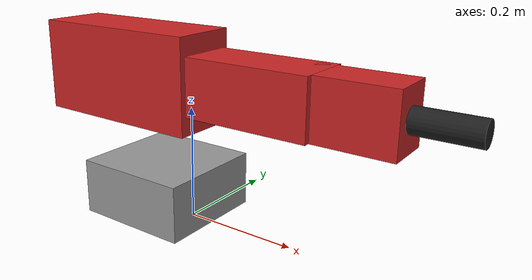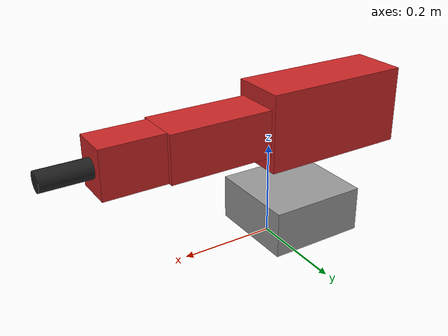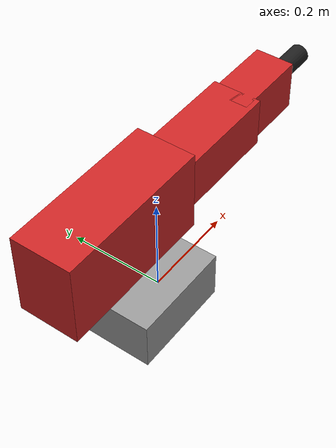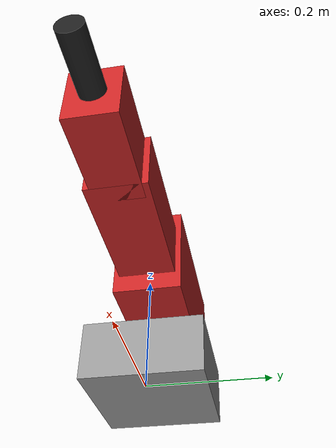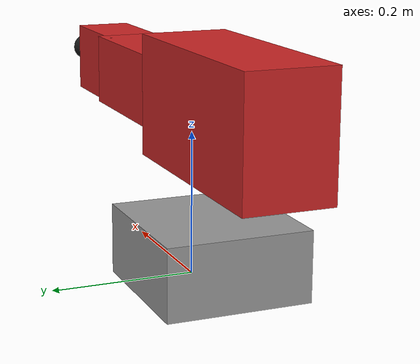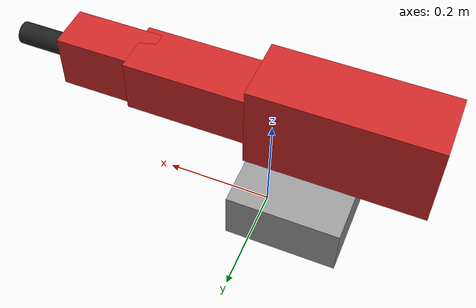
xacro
<?xml version="1.0"?>
<robot xmlns:xacro="http://www.ros.org/wiki/xacro" name="rm501">
    <xacro:arg name="initial_positions_file" default="initial_positions.yaml" />
    <xacro:arg name="ros2_control_hardware_type" default="mock_components" />

    <!-- Import rm501 urdf file -->
    <xacro:include filename="$(find rm501_description)/urdf/rm501.urdf.xacro" />

    <!-- Import control_xacro -->
    <xacro:include filename="rm501.ros2_control.xacro" />

    <xacro:rm501_ros2_control name="FakeSystem" initial_positions_file="$(arg initial_positions_file)" ros2_control_hardware_type="$(arg ros2_control_hardware_type)"/>

</robot>

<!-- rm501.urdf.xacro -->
<robot
  name="rm501" xmlns:xacro="http://www.ros.org/wiki/xacro">

  <xacro:include filename="$(find rm501_description)/urdf/materials.xacro" />

  <xacro:property name="PI" value="3.1415926535897931"/>

  <xacro:property name="density" value="3.09"/>

  <link name="world"/>

  <joint name="world_base" type="fixed">
    <origin
      xyz="0 0 0"
      rpy="0 0 0" />
    <parent
      link="world" />
    <child
      link="rm501_base_link" />
  </joint>

  <link name="rm501_base_link"/>

  <joint name="rm501_base_joint" type="fixed">
    <origin
      xyz="0 0 0"
      rpy="0 0 0" />
    <parent
      link="rm501_base_link" />
    <child
      link="rm501_base" />
  </joint>

  <link
    name="rm501_base">
    <inertial>
      <origin
        xyz="0 0 0"
        rpy="0 0 0"/>
      <mass value="${0.890680700037*density}"/>
      <inertia
      ixx="${0.00287631*density}" ixy="${1.617e-05*density}" ixz="${3.38e-06*density}"
      iyy="${0.00304792*density}" iyz="${2.79e-05*density}"
      izz="${0.00537429*density}"/>
    </inertial>
    <visual>
      <origin
        xyz="-0.060 0 0.049"
        rpy="0 0 0" />
      <geometry>
        <box size="0.208 0.200 0.098"/>
      </geometry>
      <material
        name="metal_grey"/>
    </visual>
    <collision>
      <origin
        xyz="0 0 0"
        rpy="0 0 0" />
      <geometry>
        <box size="0.208 0.200 0.098"/>
      </geometry>
    </collision>
  </link>

<link
    name="rm501_link1">
    <inertial>
      <origin
        xyz="0 0 0"
        rpy="0 0 0"/>
      <mass value="${5.04797690664*density}"/>
      <inertia
      ixx="${0.03982126*density}" ixy="${0.00844769*density}" ixz="${-4.29e-06*density}"
      iyy="${0.02114179*density}" iyz="${-2.23e-06*density}"
      izz="${0.04547525*density}"/>
    </inertial>
    <visual>
      <origin
        xyz="-0.130 0 0"
        rpy="0 0 0" />
      <geometry>
        <box size="0.320 0.120 0.165"/>
      </geometry>
      <material
        name="red"/>
    </visual>
    <collision>
      <origin
        xyz="0 0 0"
        rpy="0 0 0" />
      <geometry>
      <box size="0.320 0.120 0.120"/>
      </geometry>
    </collision>
  </link>

  <joint
    name="rm501_joint1"
    type="revolute">
    <origin
      xyz="0 0 0.250"
      rpy="0 0 0" />
    <parent
      link="rm501_base" />
    <child
      link="rm501_link1" />
    <axis
      xyz="0 0 1" />
    <limit
      lower="-2.61799"
      upper="2.61799"
      effort="1000"
      velocity="1.57" />
  </joint>

<link
    name="rm501_link2">
    <inertial>
      <origin
        xyz="-0.0589642426226 0.20968040657 -5.33587812464e-06"
        rpy="0 0 0"/>
      <mass value="${1.66596877354*density}"/>
      <inertia
      ixx="${0.052412*density}" ixy="${-0.00219612*density}" ixz="${-1.07e-06*density}"
      iyy="${0.00434323*density}" iyz="${-1.255e-05*density}"
      izz="${0.05107023*density}"/>
    </inertial>
    <visual>
      <origin
        xyz="0.125 0 0"
        rpy="0 0 0" />
      <geometry>
        <box size="0.250 0.100 0.100"/>
      </geometry>
      <material
        name="red"/>
    </visual>
    <collision>
      <origin
        xyz="0 0 0"
        rpy="0 0 0" />
      <geometry>
      <box size="0.250 0.100 0.100"/>
      </geometry>
    </collision>
  </link>

<joint
    name="rm501_joint2"
    type="revolute">
    <origin
      xyz="0 0 0"
      rpy="0 0 0" />
    <parent
      link="rm501_link1" />
    <child
      link="rm501_link2" />
    <axis
      xyz="0 1 0" />
    <limit
      lower="-1.74533"
      upper="0.523599"
      effort="1000"
      velocity="1.57" />
  </joint>

  <link
    name="rm501_link3">
    <inertial>
      <origin
        xyz="0.0625690665762 -0.0521846187635 2.58799082907e-05"
        rpy="0 0 0"/>
      <mass value="${2.51986584925*density}"/>
      <inertia
      ixx="${0.01259396*density}" ixy="${0.00288795*density}" ixz="${-1.16e-06*density}"
      iyy="${0.00707893*density}" iyz="${-2.15e-06*density}"
      izz="${0.01493778*density}"/>
    </inertial>
    <visual>
      <origin
        xyz="0.080 0 0"
        rpy="0 0 0" />
      <geometry>
      <box size="0.160 0.080 0.100"/>
      </geometry>
      <material
        name="red"/>
    </visual>
    <collision>
      <origin
        xyz="0 0 0"
        rpy="0 0 0" />
      <geometry>
      <box size="0 0 0"/>
      </geometry>
    </collision>
  </link>

<joint
    name="rm501_joint3"
    type="revolute">
    <origin
      xyz="0.220 0 0"
      rpy="0 0 0" />
    <parent
      link="rm501_link2" />
    <child
      link="rm501_link3" />
    <axis
      xyz="0 1 0" />
    <limit
      lower="0"
      upper="1.5708"
      effort="1000"
      velocity="1.57" />
  </joint>

<link
    name="rm501_link4">
    <inertial>
      <origin
        xyz="-0.0653325107739 0.17924183252 -8.22522528991e-06"
        rpy="0 0 0"/>
      <mass value="${0.773882513506*density}"/>
      <inertia
      ixx="${0.01260891*density}" ixy="${0.00311563*density}" ixz="${5.8e-07*density}"
      iyy="${0.00272662*density}" iyz="${-1.47e-06*density}"
      izz="${0.01371082*density}"/>
    </inertial>
    <visual>
      <origin
        xyz="0.0325 0 0"
        rpy="0 ${-PI/2} 0" />
      <geometry>
      <cylinder radius="0.02" length="0.132"/>
      </geometry>
      <material
        name="black"/>
    </visual>
    <collision>
      <origin
        xyz="0 0 0"
        rpy="0 0 0" />
      <geometry>
      <box size="0 0 0"/>
      </geometry>
    </collision>
  </link>

<joint
    name="rm501_joint4"
    type="revolute">
    <origin
      xyz="0.160 0 0"
      rpy="0 0 0" />
    <parent
      link="rm501_link3" />
    <child
      link="rm501_link4" />
    <axis
      xyz="0 1 0" />
    <limit
      lower="-1.5708"
      upper="1.5708"
      effort="1000"
      velocity="1.57" />
  </joint>

  <link
    name="rm501_link5">
    <inertial>
      <origin
        xyz="-0.0174451255278 -0.0377419055039 -1.41483594707e-05"
        rpy="0 0 0"/>
      <mass value="${1.07514483832*density}"/>
      <inertia
      ixx="${0.00296619*density}" ixy="${0.00072021*density}" ixz="${7.3e-07*density}"
      iyy="${0.00182263*density}" iyz="${-3.7e-07*density}"
      izz="${0.00372855*density}"/>
    </inertial>
    <visual>
      <origin
        xyz="0 0 0"
        rpy="0 0 0" />
      <geometry>
      <box size="0 0 0"/>
      </geometry>      <material
        name="metal"/>
    </visual>
    <collision>
      <origin
        xyz="0 0 0"
        rpy="0 0 0" />
      <geometry>
      <box size="0 0 0"/>
      </geometry>
      </collision>
  </link>

  <joint
    name="rm501_joint5"
    type="revolute">
    <origin
      xyz="0 0 0"
      rpy="0 0 0" />
    <parent
      link="rm501_link4" />
    <child
      link="rm501_link5" />
    <axis
      xyz="1 0 0" />
    <limit
      lower="${-PI/2}"
      upper="${PI/2}"
      effort="1000"
      velocity="1.57" />
  </joint>

  <link name="rm501_end_link"/>

  <joint name="rm501_end_joint" type="fixed">
    <origin
      xyz="0.065 0 0"
      rpy="0 0 0" />
    <parent
      link="rm501_link5" />
    <child
      link="rm501_end_link" />
  </joint>

  <link name="rm501_dummy_gripper"/>

  <joint name="rm501_dummy_joint" type="fixed">
    <origin
      xyz="0 0 0"
      rpy="0 0 0" />
    <parent
      link="rm501_link5" />
    <child
      link="rm501_dummy_gripper" />
  </joint>

</robot>
